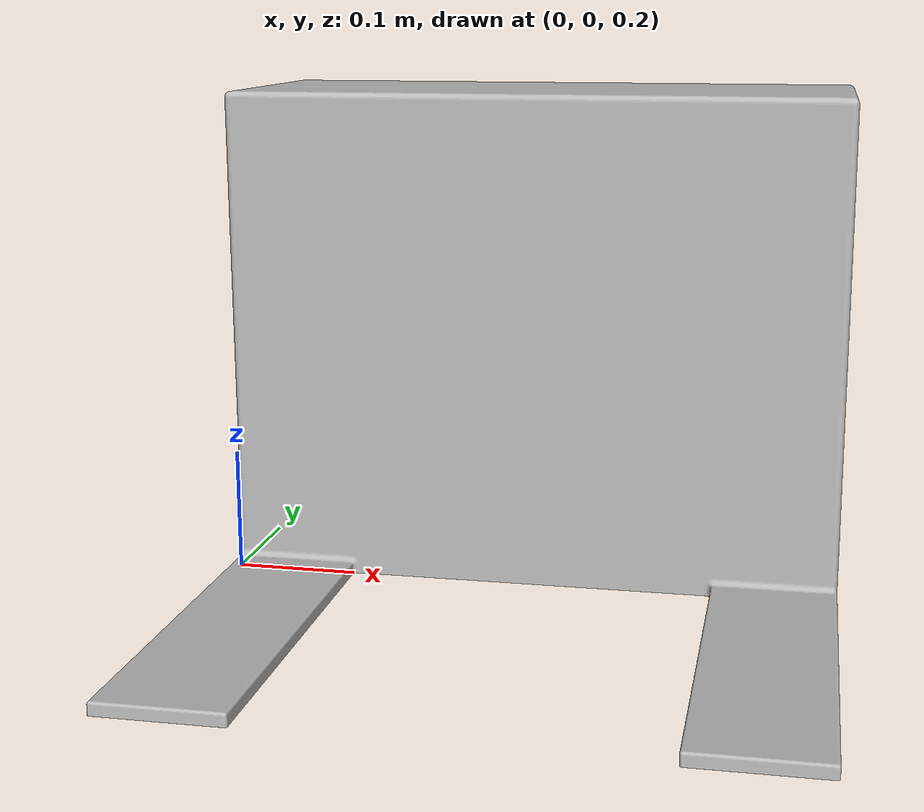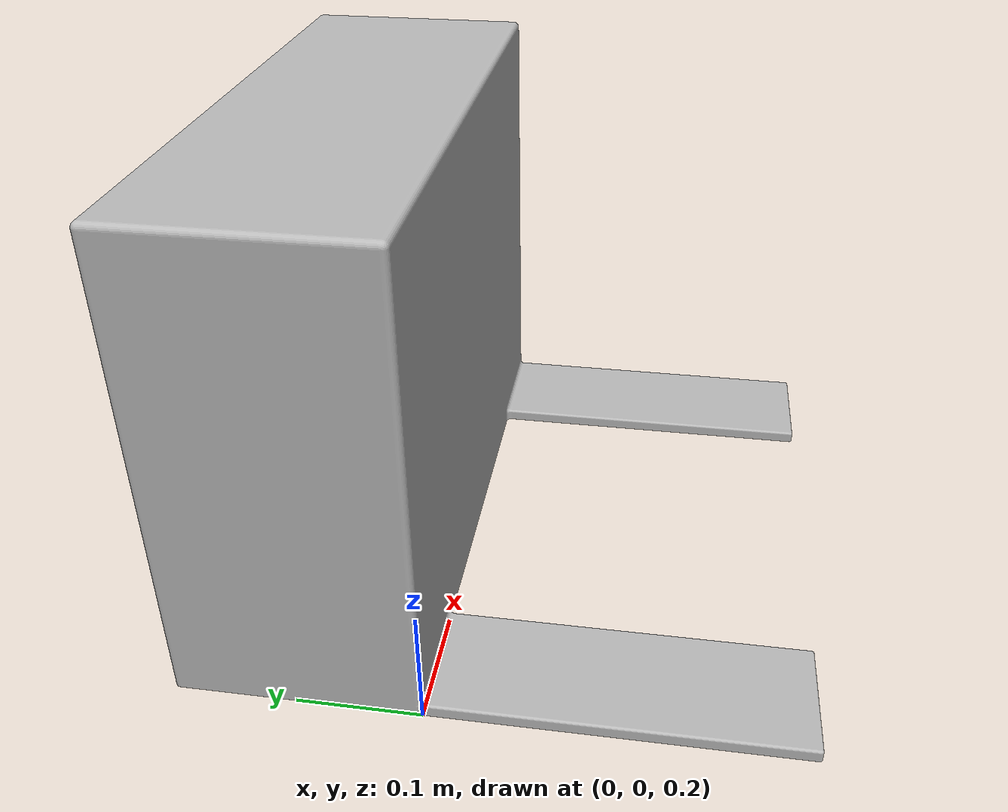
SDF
<?xml version="1.0"?>
<sdf version="1.5">
  <model name="dock">
    <static>false</static>
    <link name="link">
       <velocity_decay>
        <linear>0.001</linear>
        <angular>0.001</angular>
      </velocity_decay>
      <inertial>
        <pose>0 0 0 0 0 0</pose>
        <mass>20</mass>
        <inertia>
          <ixx>0.3417</ixx>
          <ixy>0</ixy>
          <ixz>0</ixz>
          <iyy>0.3417</iyy>
          <iyz>0</iyz>
          <izz>0.4167</izz>
        </inertia>
      </inertial>
      <collision name="collision">
        <pose>0 0 0 0 0 0</pose>
        <geometry>
          <box>
            <size>0.5 0.5 0.4</size>
          </box>
        </geometry>
      </collision>
      <visual name="visual">
        <pose> 0 0 0.2 0 0 0 </pose>
        <geometry>
          <mesh>
            <uri>model://dock/mesh/Dock.stl</uri>
            <scale>0.001 0.001 0.001</scale>
          </mesh>
        </geometry>
      </visual>
    </link>
    <plugin name="BuoyancyPlugin" filename="libbuoyancy_gazebo_plugin.so">
      <wave_model>ocean_waves</wave_model>
      <fluid_density>1000</fluid_density>
      <fluid_level>0</fluid_level>
      <linear_drag>1000.0</linear_drag>
      <angular_drag>200.0</angular_drag>
      <buoyancy name="buoyancy_base">
        <link_name>link</link_name>
      	<pose>0 0 -0.2 0 0 0</pose>
        <geometry>
          <sphere>
	    <radius>0.28794119114848615</radius>
	  </sphere>
        </geometry>
      </buoyancy>
    </plugin>
  </model>
</sdf>
